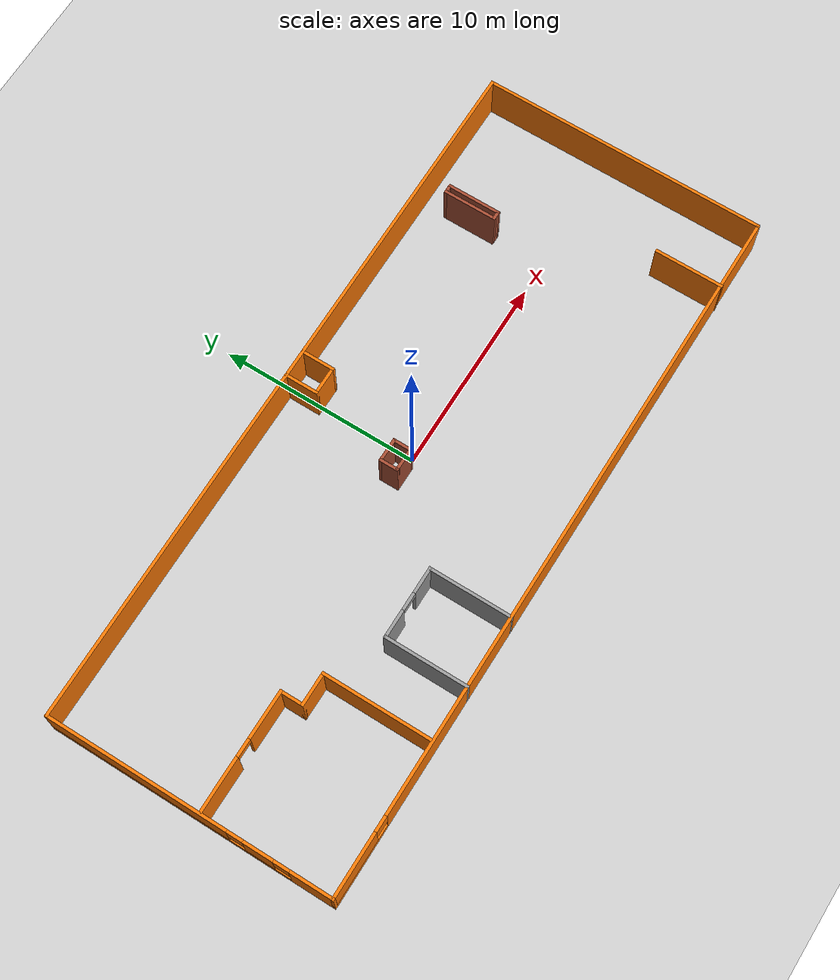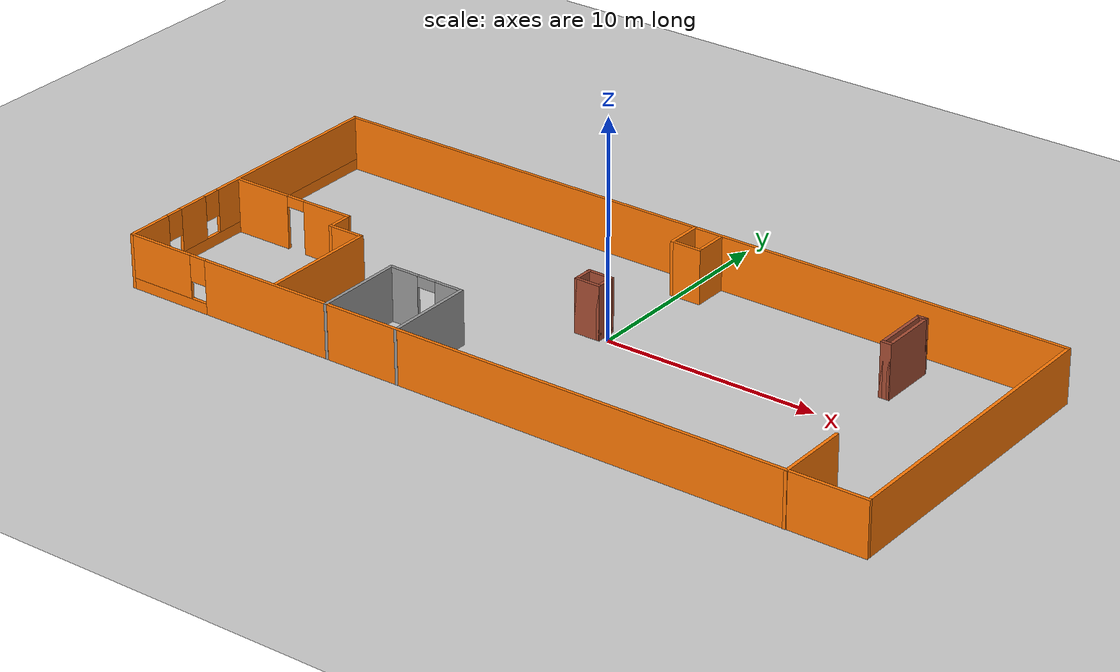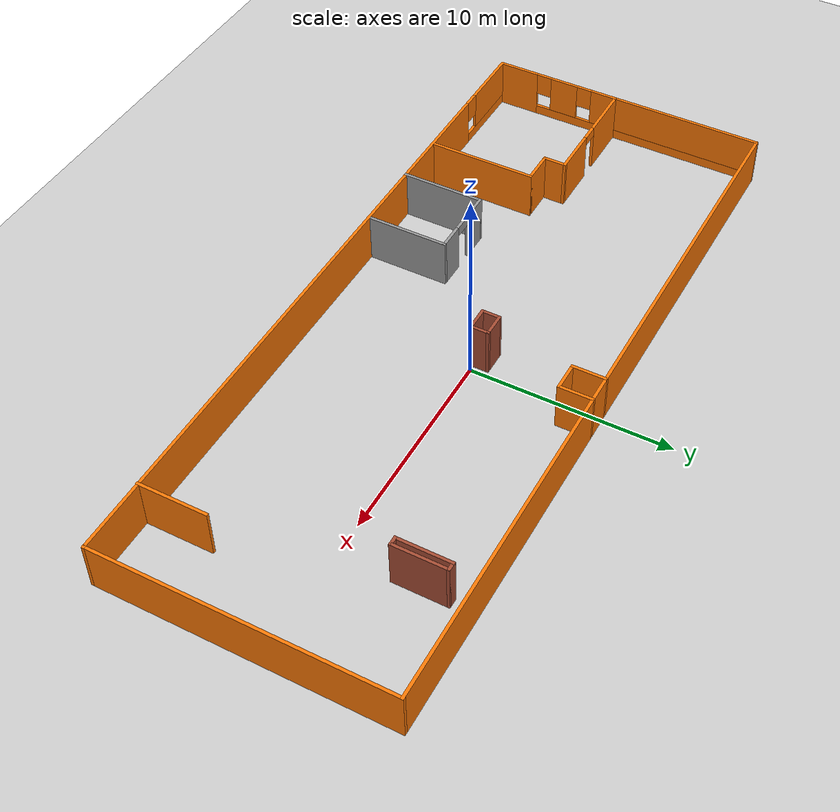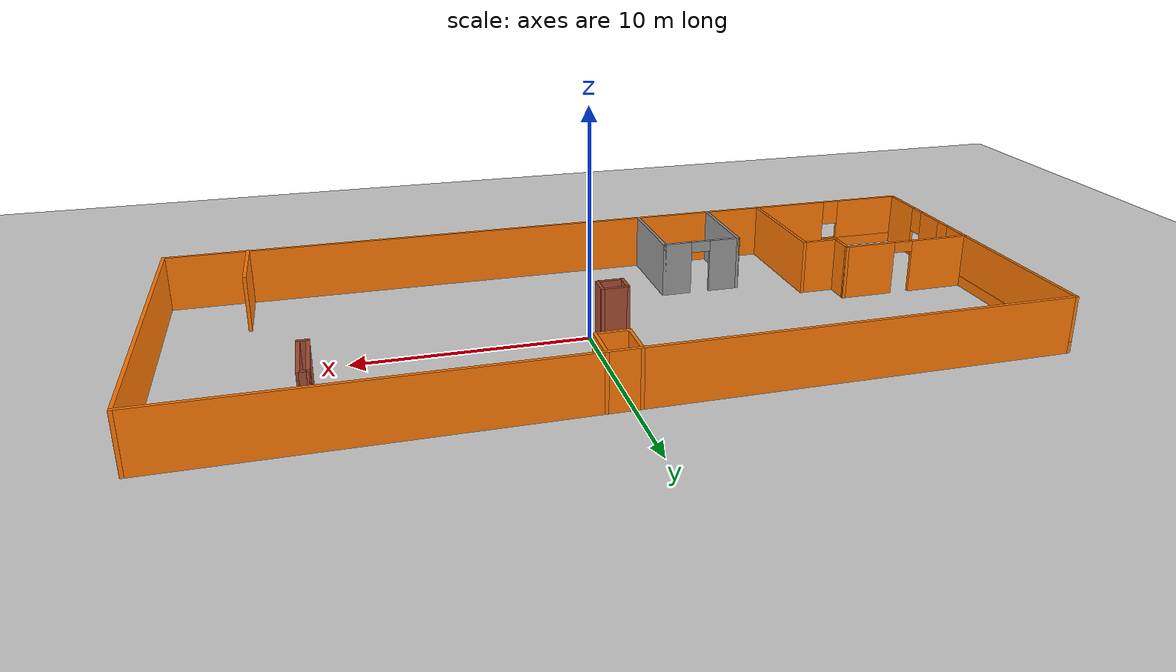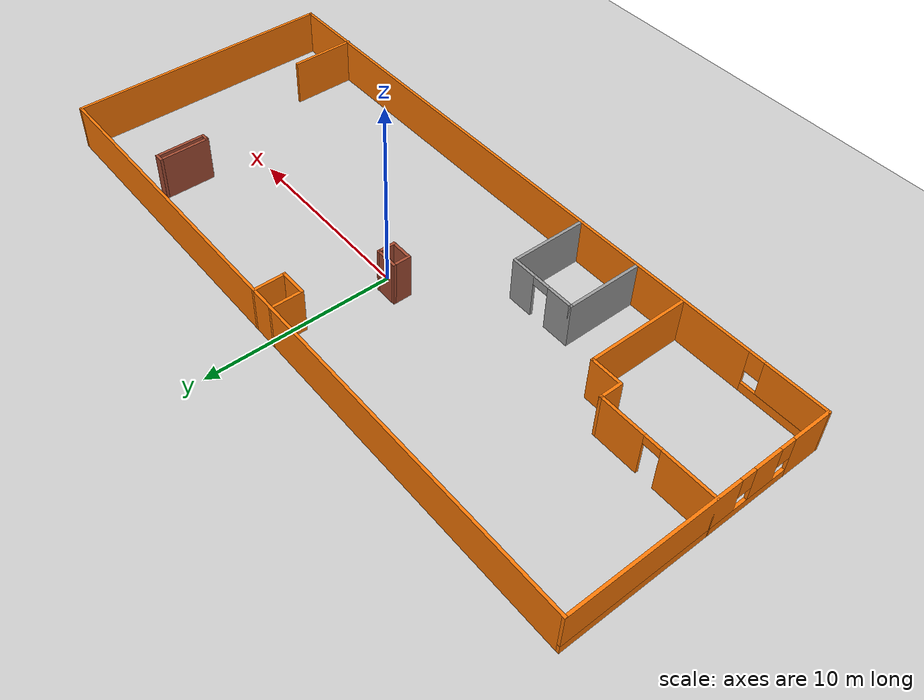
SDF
<sdf version="1.7">
 <world name="default">
  <light name="sun" type="directional">
   <pose>0 0 10 0 -0 0</pose>
   <diffuse>0.8 0.8 0.8 1</diffuse>
   <specular>0.2 0.2 0.2 1</specular>
   <attenuation>
    <range>1000</range>
    <constant>0.9</constant>
    <linear>0.01</linear>
    <quadratic>0.001</quadratic>
   </attenuation>
   <direction>-0.5 0.1 -0.9</direction>
   <spot><inner_angle>0</inner_angle><outer_angle>0</outer_angle><falloff>0</falloff></spot>
  </light>
  <model name="ground_plane">
   <static>1</static>
   <link name="link">
    <collision name="collision">
     <geometry><plane><normal>0 0 1</normal><size>100 100</size></plane></geometry>
     <surface><friction><ode><mu>100</mu><mu2>50</mu2></ode></friction></surface>
    </collision>
    <visual name="visual">
     <cast_shadows>0</cast_shadows>
     <geometry><plane><normal>0 0 1</normal><size>100 100</size></plane></geometry>
     <material>
      <script><uri>file://media/materials/scripts/gazebo.material</uri><name>Gazebo/Grey</name></script>
     </material>
    </visual>
   </link>
  </model>
  <gravity>0 0 -9.8</gravity>
  <magnetic_field>6e-06 2.3e-05 -4.2e-05</magnetic_field>
  <atmosphere type="adiabatic"/>
  <physics type="ode">
   <max_step_size>0.001</max_step_size>
   <real_time_factor>1</real_time_factor>
   <real_time_update_rate>1000</real_time_update_rate>
  </physics>
  <scene><ambient>0.4 0.4 0.4 1</ambient><background>0.7 0.7 0.7 1</background><shadows>1</shadows></scene>
  <audio><device>default</device></audio>
  <spherical_coordinates>
   <surface_model>EARTH_WGS84</surface_model>
   <latitude_deg>0</latitude_deg>
   <longitude_deg>0</longitude_deg>
   <elevation>0</elevation>
   <heading_deg>0</heading_deg>
  </spherical_coordinates>
  <model name="day6-part1">
   <pose>-0.547305 -0.715179 0 0 -0 0</pose>
   <link name="Wall_10">
    <pose>-15 -0.584822 0 0 -0 0</pose>
    <visual name="Wall_10_Visual_0">
     <pose>-1.68956 0 1.25 0 -0 0</pose>
     <geometry><box><size>2.87087 0.15 2.5</size></box></geometry>
     <material>
      <script><uri>file://media/materials/scripts/gazebo.material</uri><name>Gazebo/Grey</name></script>
      <ambient>0.996078 0.47451 0.0196078 1</ambient>
     </material>
     <meta><layer>0</layer></meta>
    </visual>
    <collision name="Wall_10_Collision_0">
     <geometry><box><size>2.87087 0.15 2.5</size></box></geometry>
     <pose>-1.68956 0 1.25 0 -0 0</pose>
    </collision>
    <visual name="Wall_10_Visual_1">
     <pose>1.88544 0 1.25 0 -0 0</pose>
     <geometry><box><size>2.47913 0.15 2.5</size></box></geometry>
     <material>
      <script><uri>file://media/materials/scripts/gazebo.material</uri><name>Gazebo/Grey</name></script>
      <ambient>0.996078 0.47451 0.0196078 1</ambient>
     </material>
     <meta><layer>0</layer></meta>
    </visual>
    <collision name="Wall_10_Collision_1">
     <geometry><box><size>2.47913 0.15 2.5</size></box></geometry>
     <pose>1.88544 0 1.25 0 -0 0</pose>
    </collision>
    <visual name="Wall_10_Visual_2">
     <pose>0.195874 0 2.25 0 -0 0</pose>
     <geometry><box><size>0.9 0.15 0.5</size></box></geometry>
     <material>
      <script><uri>file://media/materials/scripts/gazebo.material</uri><name>Gazebo/Grey</name></script>
      <ambient>0.996078 0.47451 0.0196078 1</ambient>
     </material>
     <meta><layer>0</layer></meta>
    </visual>
    <collision name="Wall_10_Collision_2">
     <geometry><box><size>0.9 0.15 0.5</size></box></geometry>
     <pose>0.195874 0 2.25 0 -0 0</pose>
    </collision>
   </link>
   <link name="Wall_11">
    <collision name="Wall_11_Collision">
     <geometry><box><size>1.25 0.15 2.5</size></box></geometry>
     <pose>0 0 1.25 0 -0 0</pose>
    </collision>
    <visual name="Wall_11_Visual">
     <pose>0 0 1.25 0 -0 0</pose>
     <geometry><box><size>1.25 0.15 2.5</size></box></geometry>
     <material>
      <script><uri>file://media/materials/scripts/gazebo.material</uri><name>Gazebo/Grey</name></script>
      <ambient>0.996078 0.47451 0.0196078 1</ambient>
     </material>
     <meta><layer>0</layer></meta>
    </visual>
    <pose>-11.95 -1.13482 0 0 -0 -1.5708</pose>
   </link>
   <link name="Wall_12">
    <collision name="Wall_12_Collision">
     <geometry><box><size>1.75 0.15 2.5</size></box></geometry>
     <pose>0 0 1.25 0 -0 0</pose>
    </collision>
    <visual name="Wall_12_Visual">
     <pose>0 0 1.25 0 -0 0</pose>
     <geometry><box><size>1.75 0.15 2.5</size></box></geometry>
     <material>
      <script><uri>file://media/materials/scripts/gazebo.material</uri><name>Gazebo/Grey</name></script>
      <ambient>0.996078 0.47451 0.0196078 1</ambient>
     </material>
     <meta><layer>0</layer></meta>
    </visual>
    <pose>-11.15 -1.68482 0 0 -0 0</pose>
   </link>
   <link name="Wall_13">
    <collision name="Wall_13_Collision">
     <geometry><box><size>5.5 0.15 2.5</size></box></geometry>
     <pose>0 0 1.25 0 -0 0</pose>
    </collision>
    <visual name="Wall_13_Visual">
     <pose>0 0 1.25 0 -0 0</pose>
     <geometry><box><size>5.5 0.15 2.5</size></box></geometry>
     <material>
      <script><uri>file://media/materials/scripts/gazebo.material</uri><name>Gazebo/Grey</name></script>
      <ambient>0.996078 0.47451 0.0196078 1</ambient>
     </material>
     <meta><layer>0</layer></meta>
    </visual>
    <pose>-10.35 -4.35982 0 0 -0 -1.5708</pose>
   </link>
   <link name="Wall_15">
    <collision name="Wall_15_Collision">
     <geometry><box><size>4.25 0.15 2.5</size></box></geometry>
     <pose>0 0 1.25 0 -0 0</pose>
    </collision>
    <visual name="Wall_15_Visual">
     <pose>0 0 1.25 0 -0 0</pose>
     <geometry><box><size>4.25 0.15 2.5</size></box></geometry>
     <material>
      <script><uri>file://media/materials/scripts/gazebo.material</uri><name>Gazebo/Grey</name></script>
      <ambient>1 1 1 1</ambient>
     </material>
     <meta><layer>0</layer></meta>
    </visual>
    <pose>-7.60191 -5.11325 0 0 -0 1.5708</pose>
   </link>
   <link name="Wall_16">
    <pose>-5.80191 -3.06325 0 0 -0 0</pose>
    <visual name="Wall_16_Visual_0">
     <pose>-1.13626 0 1.25 0 -0 0</pose>
     <geometry><box><size>1.47749 0.15 2.5</size></box></geometry>
     <material>
      <script><uri>file://media/materials/scripts/gazebo.material</uri><name>Gazebo/Grey</name></script>
      <ambient>1 1 1 1</ambient>
     </material>
     <meta><layer>0</layer></meta>
    </visual>
    <collision name="Wall_16_Collision_0">
     <geometry><box><size>1.47749 0.15 2.5</size></box></geometry>
     <pose>-1.13626 0 1.25 0 -0 0</pose>
    </collision>
    <visual name="Wall_16_Visual_1">
     <pose>1.18874 0 1.25 0 -0 0</pose>
     <geometry><box><size>1.37251 0.15 2.5</size></box></geometry>
     <material>
      <script><uri>file://media/materials/scripts/gazebo.material</uri><name>Gazebo/Grey</name></script>
      <ambient>1 1 1 1</ambient>
     </material>
     <meta><layer>0</layer></meta>
    </visual>
    <collision name="Wall_16_Collision_1">
     <geometry><box><size>1.37251 0.15 2.5</size></box></geometry>
     <pose>1.18874 0 1.25 0 -0 0</pose>
    </collision>
    <visual name="Wall_16_Visual_2">
     <pose>0.05249 0 2.25 0 -0 0</pose>
     <geometry><box><size>0.9 0.15 0.5</size></box></geometry>
     <material>
      <script><uri>file://media/materials/scripts/gazebo.material</uri><name>Gazebo/Grey</name></script>
      <ambient>1 1 1 1</ambient>
     </material>
     <meta><layer>0</layer></meta>
    </visual>
    <collision name="Wall_16_Collision_2">
     <geometry><box><size>0.9 0.15 0.5</size></box></geometry>
     <pose>0.05249 0 2.25 0 -0 0</pose>
    </collision>
   </link>
   <link name="Wall_17">
    <collision name="Wall_17_Collision">
     <geometry><box><size>4.25 0.15 2.5</size></box></geometry>
     <pose>0 0 1.25 0 -0 0</pose>
    </collision>
    <visual name="Wall_17_Visual">
     <pose>0 0 1.25 0 -0 0</pose>
     <geometry><box><size>4.25 0.15 2.5</size></box></geometry>
     <material>
      <script><uri>file://media/materials/scripts/gazebo.material</uri><name>Gazebo/Grey</name></script>
      <ambient>1 1 1 1</ambient>
     </material>
     <meta><layer>0</layer></meta>
    </visual>
    <pose>-4.00191 -5.11325 0 0 -0 -1.5708</pose>
   </link>
   <link name="Wall_19">
    <collision name="Wall_19_Collision">
     <geometry><box><size>1.75 0.15 2.5</size></box></geometry>
     <pose>0 0 1.25 0 -0 0</pose>
    </collision>
    <visual name="Wall_19_Visual">
     <pose>0 0 1.25 0 -0 0</pose>
     <geometry><box><size>1.75 0.15 2.5</size></box></geometry>
     <material>
      <script><uri>file://media/materials/scripts/gazebo.material</uri><name>Gazebo/Grey</name></script>
      <ambient>0.996078 0.47451 0.0196078 1</ambient>
     </material>
     <meta><layer>0</layer></meta>
    </visual>
    <pose>0.278136 6.38969 0 0 -0 -1.5708</pose>
   </link>
   <link name="Wall_20">
    <collision name="Wall_20_Collision">
     <geometry><box><size>1.5 0.15 2.5</size></box></geometry>
     <pose>0 0 1.25 0 -0 0</pose>
    </collision>
    <visual name="Wall_20_Visual">
     <pose>0 0 1.25 0 -0 0</pose>
     <geometry><box><size>1.5 0.15 2.5</size></box></geometry>
     <material>
      <script><uri>file://media/materials/scripts/gazebo.material</uri><name>Gazebo/Grey</name></script>
      <ambient>0.996078 0.47451 0.0196078 1</ambient>
     </material>
     <meta><layer>0</layer></meta>
    </visual>
    <pose>0.953136 5.58969 0 0 -0 0</pose>
   </link>
   <link name="Wall_21">
    <collision name="Wall_21_Collision">
     <geometry><box><size>1.75 0.15 2.5</size></box></geometry>
     <pose>0 0 1.25 0 -0 0</pose>
    </collision>
    <visual name="Wall_21_Visual">
     <pose>0 0 1.25 0 -0 0</pose>
     <geometry><box><size>1.75 0.15 2.5</size></box></geometry>
     <material>
      <script><uri>file://media/materials/scripts/gazebo.material</uri><name>Gazebo/Grey</name></script>
      <ambient>0.996078 0.47451 0.0196078 1</ambient>
     </material>
     <meta><layer>0</layer></meta>
    </visual>
    <pose>1.62814 6.38969 0 0 -0 1.5708</pose>
   </link>
   <link name="Wall_32">
    <collision name="Wall_32_Collision">
     <geometry><box><size>1 0.15 2.5</size></box></geometry>
     <pose>0 0 1.25 0 -0 0</pose>
    </collision>
    <visual name="Wall_32_Visual">
     <pose>0 0 1.25 0 -0 0</pose>
     <geometry><box><size>1 0.15 2.5</size></box></geometry>
     <material>
      <script><uri>file://media/materials/scripts/gazebo.material</uri><name>Gazebo/Bricks</name></script>
      <ambient>0.996078 0.47451 0.0196078 1</ambient>
     </material>
     <meta><layer>0</layer></meta>
    </visual>
    <pose>-0.905575 0.998423 0 0 -0 -1.5708</pose>
   </link>
   <link name="Wall_33">
    <collision name="Wall_33_Collision">
     <geometry><box><size>1.25 0.15 2.5</size></box></geometry>
     <pose>0 0 1.25 0 -0 0</pose>
    </collision>
    <visual name="Wall_33_Visual">
     <pose>0 0 1.25 0 -0 0</pose>
     <geometry><box><size>1.25 0.15 2.5</size></box></geometry>
     <material>
      <script><uri>file://media/materials/scripts/gazebo.material</uri><name>Gazebo/Bricks</name></script>
      <ambient>0.996078 0.47451 0.0196078 1</ambient>
     </material>
     <meta><layer>0</layer></meta>
    </visual>
    <pose>-0.355575 0.573423 0 0 -0 0</pose>
   </link>
   <link name="Wall_34">
    <collision name="Wall_34_Collision">
     <geometry><box><size>1 0.15 2.5</size></box></geometry>
     <pose>0 0 1.25 0 -0 0</pose>
    </collision>
    <visual name="Wall_34_Visual">
     <pose>0 0 1.25 0 -0 0</pose>
     <geometry><box><size>1 0.15 2.5</size></box></geometry>
     <material>
      <script><uri>file://media/materials/scripts/gazebo.material</uri><name>Gazebo/Bricks</name></script>
      <ambient>0.996078 0.47451 0.0196078 1</ambient>
     </material>
     <meta><layer>0</layer></meta>
    </visual>
    <pose>0.194425 0.998423 0 0 -0 1.5708</pose>
   </link>
   <link name="Wall_35">
    <collision name="Wall_35_Collision">
     <geometry><box><size>1.25 0.15 2.5</size></box></geometry>
     <pose>0 0 1.25 0 -0 0</pose>
    </collision>
    <visual name="Wall_35_Visual">
     <pose>0 0 1.25 0 -0 0</pose>
     <geometry><box><size>1.25 0.15 2.5</size></box></geometry>
     <material>
      <script><uri>file://media/materials/scripts/gazebo.material</uri><name>Gazebo/Bricks</name></script>
      <ambient>0.996078 0.47451 0.0196078 1</ambient>
     </material>
     <meta><layer>0</layer></meta>
    </visual>
    <pose>-0.355575 1.42342 0 0 -0 3.14159</pose>
   </link>
   <link name="Wall_37">
    <collision name="Wall_37_Collision">
     <geometry><box><size>2.75 0.15 2.5</size></box></geometry>
     <pose>0 0 1.25 0 -0 0</pose>
    </collision>
    <visual name="Wall_37_Visual">
     <pose>0 0 1.25 0 -0 0</pose>
     <geometry><box><size>2.75 0.15 2.5</size></box></geometry>
     <material>
      <script><uri>file://media/materials/scripts/gazebo.material</uri><name>Gazebo/Bricks</name></script>
      <ambient>0.996078 0.47451 0.0196078 1</ambient>
     </material>
     <meta><layer>0</layer></meta>
    </visual>
    <pose>11.9317 4.67978 0 0 -0 -1.5708</pose>
   </link>
   <link name="Wall_38">
    <collision name="Wall_38_Collision">
     <geometry><box><size>0.5 0.15 2.5</size></box></geometry>
     <pose>0 0 1.25 0 -0 0</pose>
    </collision>
    <visual name="Wall_38_Visual">
     <pose>0 0 1.25 0 -0 0</pose>
     <geometry><box><size>0.5 0.15 2.5</size></box></geometry>
     <material>
      <script><uri>file://media/materials/scripts/gazebo.material</uri><name>Gazebo/Bricks</name></script>
      <ambient>0.996078 0.47451 0.0196078 1</ambient>
     </material>
     <meta><layer>0</layer></meta>
    </visual>
    <pose>12.1067 3.37978 0 0 -0 0</pose>
   </link>
   <link name="Wall_39">
    <collision name="Wall_39_Collision">
     <geometry><box><size>2.75 0.15 2.5</size></box></geometry>
     <pose>0 0 1.25 0 -0 0</pose>
    </collision>
    <visual name="Wall_39_Visual">
     <pose>0 0 1.25 0 -0 0</pose>
     <geometry><box><size>2.75 0.15 2.5</size></box></geometry>
     <material>
      <script><uri>file://media/materials/scripts/gazebo.material</uri><name>Gazebo/Bricks</name></script>
      <ambient>0.996078 0.47451 0.0196078 1</ambient>
     </material>
     <meta><layer>0</layer></meta>
    </visual>
    <pose>12.2817 4.67978 0 0 -0 1.5708</pose>
   </link>
   <link name="Wall_40">
    <collision name="Wall_40_Collision">
     <geometry><box><size>0.5 0.15 2.5</size></box></geometry>
     <pose>0 0 1.25 0 -0 0</pose>
    </collision>
    <visual name="Wall_40_Visual">
     <pose>0 0 1.25 0 -0 0</pose>
     <geometry><box><size>0.5 0.15 2.5</size></box></geometry>
     <material>
      <script><uri>file://media/materials/scripts/gazebo.material</uri><name>Gazebo/Bricks</name></script>
      <ambient>0.996078 0.47451 0.0196078 1</ambient>
     </material>
     <meta><layer>0</layer></meta>
    </visual>
    <pose>12.1067 5.97978 0 0 -0 3.14159</pose>
   </link>
   <link name="Wall_42">
    <collision name="Wall_42_Collision">
     <geometry><box><size>3.5 0.15 2.5</size></box></geometry>
     <pose>0 0 1.25 0 -0 0</pose>
    </collision>
    <visual name="Wall_42_Visual">
     <pose>0 0 1.25 0 -0 0</pose>
     <geometry><box><size>3.5 0.15 2.5</size></box></geometry>
     <material>
      <script><uri>file://media/materials/scripts/gazebo.material</uri><name>Gazebo/Grey</name></script>
      <ambient>0.996078 0.47451 0.0196078 1</ambient>
     </material>
     <meta><layer>0</layer></meta>
    </visual>
    <pose>14.4707 -5.51469 0 0 -0 -1.5708</pose>
   </link>
   <link name="Wall_5">
    <collision name="Wall_5_Collision">
     <geometry><box><size>36.25 0.15 2.5</size></box></geometry>
     <pose>0 0 1.25 0 -0 0</pose>
    </collision>
    <visual name="Wall_5_Visual">
     <pose>0 0 1.25 0 -0 0</pose>
     <geometry><box><size>36.25 0.15 2.5</size></box></geometry>
     <material>
      <script><uri>file://media/materials/scripts/gazebo.material</uri><name>Gazebo/Grey</name></script>
      <ambient>0.996078 0.47451 0.0196078 1</ambient>
     </material>
     <meta><layer>0</layer></meta>
    </visual>
    <pose>1e-06 7.18968 0 0 -0 0</pose>
   </link>
   <link name="Wall_6">
    <collision name="Wall_6_Collision">
     <geometry><box><size>14.5 0.15 2.5</size></box></geometry>
     <pose>0 0 1.25 0 -0 0</pose>
    </collision>
    <visual name="Wall_6_Visual">
     <pose>0 0 1.25 0 -0 0</pose>
     <geometry><box><size>14.5 0.15 2.5</size></box></geometry>
     <material>
      <script><uri>file://media/materials/scripts/gazebo.material</uri><name>Gazebo/Grey</name></script>
      <ambient>0.996078 0.47451 0.0196078 1</ambient>
     </material>
     <meta><layer>0</layer></meta>
    </visual>
    <pose>18.05 0.014685 0 0 -0 -1.5708</pose>
   </link>
   <link name="Wall_7">
    <pose>1e-06 -7.16031 0 0 -0 3.14159</pose>
    <visual name="Wall_7_Visual_0">
     <pose>-2.04485 0 1.25 0 -0 0</pose>
     <geometry><box><size>32.1603 0.15 2.5</size></box></geometry>
     <material>
      <script><uri>file://media/materials/scripts/gazebo.material</uri><name>Gazebo/Grey</name></script>
      <ambient>0.996078 0.47451 0.0196078 1</ambient>
     </material>
     <meta><layer>0</layer></meta>
    </visual>
    <collision name="Wall_7_Collision_0">
     <geometry><box><size>32.1603 0.15 2.5</size></box></geometry>
     <pose>-2.04485 0 1.25 0 -0 0</pose>
    </collision>
    <visual name="Wall_7_Visual_1">
     <pose>16.0802 0 0.25 0 -0 0</pose>
     <geometry><box><size>4.0897 0.15 0.5</size></box></geometry>
     <material>
      <script><uri>file://media/materials/scripts/gazebo.material</uri><name>Gazebo/Grey</name></script>
      <ambient>0.996078 0.47451 0.0196078 1</ambient>
     </material>
     <meta><layer>0</layer></meta>
    </visual>
    <collision name="Wall_7_Collision_1">
     <geometry><box><size>4.0897 0.15 0.5</size></box></geometry>
     <pose>16.0802 0 0.25 0 -0 0</pose>
    </collision>
    <visual name="Wall_7_Visual_2">
     <pose>16.4802 0 1.5 0 -0 0</pose>
     <geometry><box><size>3.2897 0.15 2</size></box></geometry>
     <material>
      <script><uri>file://media/materials/scripts/gazebo.material</uri><name>Gazebo/Grey</name></script>
      <ambient>0.996078 0.47451 0.0196078 1</ambient>
     </material>
     <meta><layer>0</layer></meta>
    </visual>
    <collision name="Wall_7_Collision_2">
     <geometry><box><size>3.2897 0.15 2</size></box></geometry>
     <pose>16.4802 0 1.5 0 -0 0</pose>
    </collision>
    <visual name="Wall_7_Visual_3">
     <pose>14.4353 0 1.9 0 -0 0</pose>
     <geometry><box><size>0.8 0.15 1.2</size></box></geometry>
     <material>
      <script><uri>file://media/materials/scripts/gazebo.material</uri><name>Gazebo/Grey</name></script>
      <ambient>0.996078 0.47451 0.0196078 1</ambient>
     </material>
     <meta><layer>0</layer></meta>
    </visual>
    <collision name="Wall_7_Collision_3">
     <geometry><box><size>0.8 0.15 1.2</size></box></geometry>
     <pose>14.4353 0 1.9 0 -0 0</pose>
    </collision>
   </link>
   <link name="Wall_8">
    <pose>-18.05 0.014685 0 0 -0 1.5708</pose>
    <visual name="Wall_8_Visual_0">
     <pose>-6.15168 0 1.25 0 -0 0</pose>
     <geometry><box><size>2.19663 0.15 2.5</size></box></geometry>
     <material>
      <script><uri>file://media/materials/scripts/gazebo.material</uri><name>Gazebo/Grey</name></script>
      <ambient>0.996078 0.47451 0.0196078 1</ambient>
     </material>
     <meta><layer>0</layer></meta>
    </visual>
    <collision name="Wall_8_Collision_0">
     <geometry><box><size>2.19663 0.15 2.5</size></box></geometry>
     <pose>-6.15168 0 1.25 0 -0 0</pose>
    </collision>
    <visual name="Wall_8_Visual_1">
     <pose>1.09831 0 0.25 0 -0 0</pose>
     <geometry><box><size>12.3034 0.15 0.5</size></box></geometry>
     <material>
      <script><uri>file://media/materials/scripts/gazebo.material</uri><name>Gazebo/Grey</name></script>
      <ambient>0.996078 0.47451 0.0196078 1</ambient>
     </material>
     <meta><layer>0</layer></meta>
    </visual>
    <collision name="Wall_8_Collision_1">
     <geometry><box><size>12.3034 0.15 0.5</size></box></geometry>
     <pose>1.09831 0 0.25 0 -0 0</pose>
    </collision>
    <visual name="Wall_8_Visual_2">
     <pose>-3.50307 0 1.5 0 -0 0</pose>
     <geometry><box><size>1.50061 0.15 2</size></box></geometry>
     <material>
      <script><uri>file://media/materials/scripts/gazebo.material</uri><name>Gazebo/Grey</name></script>
      <ambient>0.996078 0.47451 0.0196078 1</ambient>
     </material>
     <meta><layer>0</layer></meta>
    </visual>
    <collision name="Wall_8_Collision_2">
     <geometry><box><size>1.50061 0.15 2</size></box></geometry>
     <pose>-3.50307 0 1.5 0 -0 0</pose>
    </collision>
    <visual name="Wall_8_Visual_3">
     <pose>2.64862 0 1.5 0 -0 0</pose>
     <geometry><box><size>9.20276 0.15 2</size></box></geometry>
     <material>
      <script><uri>file://media/materials/scripts/gazebo.material</uri><name>Gazebo/Grey</name></script>
      <ambient>0.996078 0.47451 0.0196078 1</ambient>
     </material>
     <meta><layer>0</layer></meta>
    </visual>
    <collision name="Wall_8_Collision_3">
     <geometry><box><size>9.20276 0.15 2</size></box></geometry>
     <pose>2.64862 0 1.5 0 -0 0</pose>
    </collision>
    <visual name="Wall_8_Visual_4">
     <pose>-4.65337 0 1.9 0 -0 0</pose>
     <geometry><box><size>0.8 0.15 1.2</size></box></geometry>
     <material>
      <script><uri>file://media/materials/scripts/gazebo.material</uri><name>Gazebo/Grey</name></script>
      <ambient>0.996078 0.47451 0.0196078 1</ambient>
     </material>
     <meta><layer>0</layer></meta>
    </visual>
    <collision name="Wall_8_Collision_4">
     <geometry><box><size>0.8 0.15 1.2</size></box></geometry>
     <pose>-4.65337 0 1.9 0 -0 0</pose>
    </collision>
    <visual name="Wall_8_Visual_5">
     <pose>-2.35276 0 1.9 0 -0 0</pose>
     <geometry><box><size>0.8 0.15 1.2</size></box></geometry>
     <material>
      <script><uri>file://media/materials/scripts/gazebo.material</uri><name>Gazebo/Grey</name></script>
      <ambient>0.996078 0.47451 0.0196078 1</ambient>
     </material>
     <meta><layer>0</layer></meta>
    </visual>
    <collision name="Wall_8_Collision_5">
     <geometry><box><size>0.8 0.15 1.2</size></box></geometry>
     <pose>-2.35276 0 1.9 0 -0 0</pose>
    </collision>
   </link>
   <static>1</static>
  </model>
 </world>
</sdf>
